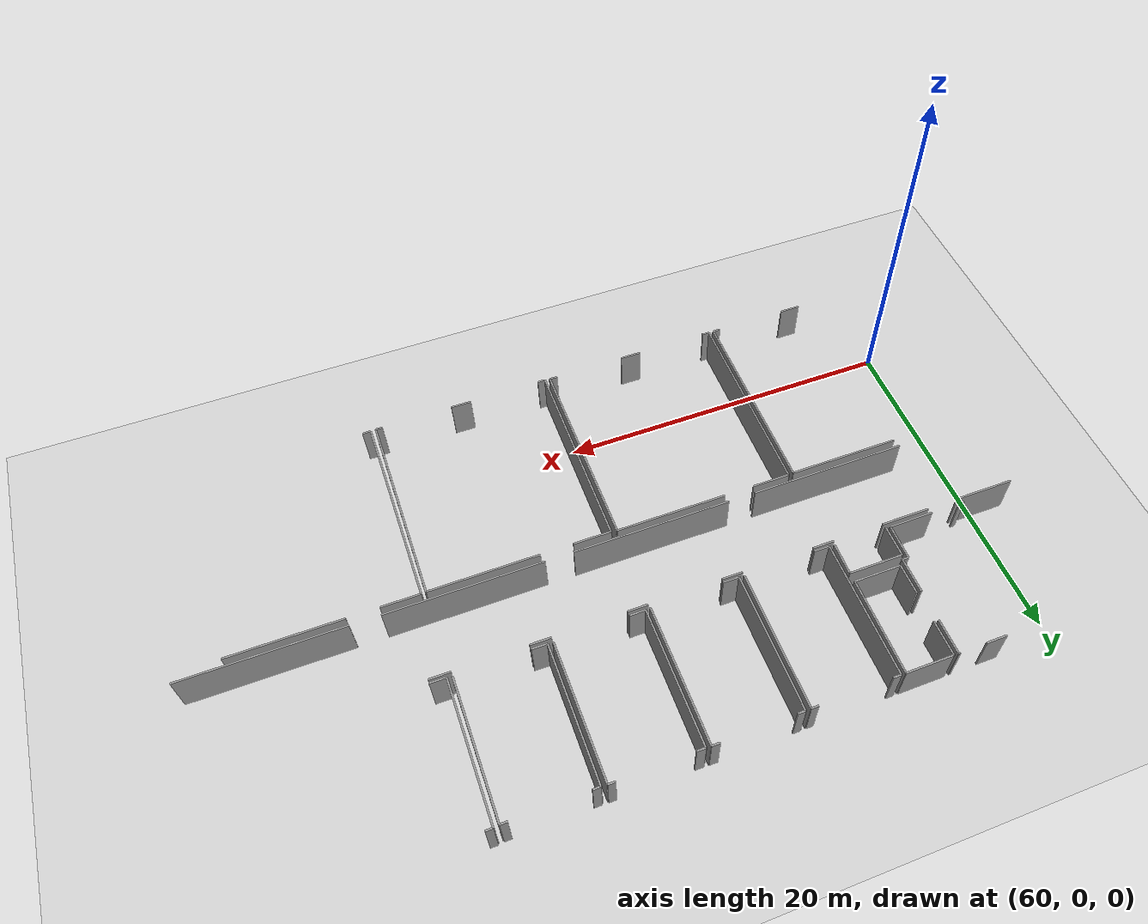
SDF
<sdf version="1.6">
 <world name="default">
  <model name="ground_plane">
   <static>1</static>
   <link name="link">
    <collision name="collision">
     <geometry><plane><normal>0 0 1</normal><size>100 100</size></plane></geometry>
     <surface><friction><ode><mu>100</mu><mu2>50</mu2></ode></friction></surface>
    </collision>
    <visual name="visual">
     <cast_shadows>0</cast_shadows>
     <geometry><plane><normal>0 0 1</normal><size>100 100</size></plane></geometry>
     <material>
      <script><uri>file://media/materials/scripts/gazebo.material</uri><name>Gazebo/Grey</name></script>
     </material>
    </visual>
   </link>
  </model>
  <model name="50037764_PLAN2">
   <static>1</static>
   <link name="Wall_424">
    <collision name="Wall_424_Collision">
     <geometry><box><size>1.22324469978 0.1 2.5</size></box></geometry>
     <pose>0.611622349891 0 1.25 0 0 0</pose>
    </collision>
    <visual name="Wall_424_Visual">
     <pose>0.611622349891 0 1.25 0 0 0</pose>
     <geometry><box><size>1.22324469978 0.1 2.5</size></box></geometry>
     <material>
      <script><uri>file://media/materials/scripts/gazebo.material</uri><name>Gazebo/Grey</name></script>
      <ambient>1 1 1 1</ambient>
     </material>
    </visual>
    <pose>227.818343586 -8.87337942956 0 0 0 3.14159265359</pose>
   </link>
   <link name="Wall_425">
    <collision name="Wall_425_Collision">
     <geometry><box><size>1.20062026539 0.1 2.5</size></box></geometry>
     <pose>0.600310132696 0 1.25 0 0 0</pose>
    </collision>
    <visual name="Wall_425_Visual">
     <pose>0.600310132696 0 1.25 0 0 0</pose>
     <geometry><box><size>1.20062026539 0.1 2.5</size></box></geometry>
     <material>
      <script><uri>file://media/materials/scripts/gazebo.material</uri><name>Gazebo/Grey</name></script>
      <ambient>1 1 1 1</ambient>
     </material>
    </visual>
    <pose>222.413900046 -8.87337942956 0 0 0 3.14159265359</pose>
   </link>
   <link name="Wall_426">
    <collision name="Wall_426_Collision">
     <geometry><box><size>1.16274340333 0.1 2.5</size></box></geometry>
     <pose>0.581371701663 0 1.25 0 0 0</pose>
    </collision>
    <visual name="Wall_426_Visual">
     <pose>0.581371701663 0 1.25 0 0 0</pose>
     <geometry><box><size>1.16274340333 0.1 2.5</size></box></geometry>
     <material>
      <script><uri>file://media/materials/scripts/gazebo.material</uri><name>Gazebo/Grey</name></script>
      <ambient>1 1 1 1</ambient>
     </material>
    </visual>
    <pose>217.011490162 -8.87337942956 0 0 0 3.14159265359</pose>
   </link>
   <link name="Wall_427">
    <collision name="Wall_427_Collision">
     <geometry><box><size>1.19655295134 0.1 2.5</size></box></geometry>
     <pose>0.598276475672 0 1.25 0 0 0</pose>
    </collision>
    <visual name="Wall_427_Visual">
     <pose>0.598276475672 0 1.25 0 0 0</pose>
     <geometry><box><size>1.19655295134 0.1 2.5</size></box></geometry>
     <material>
      <script><uri>file://media/materials/scripts/gazebo.material</uri><name>Gazebo/Grey</name></script>
      <ambient>1 1 1 1</ambient>
     </material>
    </visual>
    <pose>211.590014744 -8.87337942956 0 0 0 3.14159265359</pose>
   </link>
   <link name="Wall_428">
    <collision name="Wall_428_Collision">
     <geometry><box><size>1.24383547715 0.1 2.5</size></box></geometry>
     <pose>0.621917738573 0 1.25 0 0 0</pose>
    </collision>
    <visual name="Wall_428_Visual">
     <pose>0.621917738573 0 1.25 0 0 0</pose>
     <geometry><box><size>1.24383547715 0.1 2.5</size></box></geometry>
     <material>
      <script><uri>file://media/materials/scripts/gazebo.material</uri><name>Gazebo/Grey</name></script>
      <ambient>1 1 1 1</ambient>
     </material>
    </visual>
    <pose>206.165997255 -8.87337942956 0 0 0 3.14159265359</pose>
   </link>
   <link name="Wall_429">
    <collision name="Wall_429_Collision">
     <geometry><box><size>2.86847323199 0.1 2.5</size></box></geometry>
     <pose>1.43423661599 0 1.25 0 0 0</pose>
    </collision>
    <visual name="Wall_429_Visual">
     <pose>1.43423661599 0 1.25 0 0 0</pose>
     <geometry><box><size>2.86847323199 0.1 2.5</size></box></geometry>
     <material>
      <script><uri>file://media/materials/scripts/gazebo.material</uri><name>Gazebo/Grey</name></script>
      <ambient>1 1 1 1</ambient>
     </material>
    </visual>
    <pose>201.901418476 -8.87337942956 0 0 0 3.14159265359</pose>
   </link>
   <link name="Wall_430">
    <collision name="Wall_430_Collision">
     <geometry><box><size>3.4839086888 0.1 2.5</size></box></geometry>
     <pose>1.7419543444 0 1.25 0 0 0</pose>
    </collision>
    <visual name="Wall_430_Visual">
     <pose>1.7419543444 0 1.25 0 0 0</pose>
     <geometry><box><size>3.4839086888 0.1 2.5</size></box></geometry>
     <material>
      <script><uri>file://media/materials/scripts/gazebo.material</uri><name>Gazebo/Grey</name></script>
      <ambient>1 1 1 1</ambient>
     </material>
    </visual>
    <pose>197.208754893 -8.87337942956 0 0 0 3.14159265359</pose>
   </link>
   <link name="Wall_432">
    <collision name="Wall_432_Collision">
     <geometry><box><size>9.21475418171 0.1 2.5</size></box></geometry>
     <pose>4.60737709085 0 1.25 0 0 0</pose>
    </collision>
    <visual name="Wall_432_Visual">
     <pose>4.60737709085 0 1.25 0 0 0</pose>
     <geometry><box><size>9.21475418171 0.1 2.5</size></box></geometry>
     <material>
      <script><uri>file://media/materials/scripts/gazebo.material</uri><name>Gazebo/Grey</name></script>
      <ambient>1 1 1 1</ambient>
     </material>
    </visual>
    <pose>198.422085515 -13.3189536835 0 0 0 0.0</pose>
   </link>
   <link name="Wall_433">
    <collision name="Wall_433_Collision">
     <geometry><box><size>9.21348314607 0.1 2.5</size></box></geometry>
     <pose>4.60674157303 0 1.25 0 0 0</pose>
    </collision>
    <visual name="Wall_433_Visual">
     <pose>4.60674157303 0 1.25 0 0 0</pose>
     <geometry><box><size>9.21348314607 0.1 2.5</size></box></geometry>
     <material>
      <script><uri>file://media/materials/scripts/gazebo.material</uri><name>Gazebo/Grey</name></script>
      <ambient>1 1 1 1</ambient>
     </material>
    </visual>
    <pose>209.244445574 -13.3189536835 0 0 0 0.0</pose>
   </link>
   <link name="Wall_434">
    <collision name="Wall_434_Collision">
     <geometry><box><size>9.06960191164 0.1 2.5</size></box></geometry>
     <pose>4.53480095582 0 1.25 0 0 0</pose>
    </collision>
    <visual name="Wall_434_Visual">
     <pose>4.53480095582 0 1.25 0 0 0</pose>
     <geometry><box><size>9.06960191164 0.1 2.5</size></box></geometry>
     <material>
      <script><uri>file://media/materials/scripts/gazebo.material</uri><name>Gazebo/Grey</name></script>
      <ambient>1 1 1 1</ambient>
     </material>
    </visual>
    <pose>220.09273476 -13.3189536835 0 0 0 0.0</pose>
   </link>
   <link name="Wall_435">
    <collision name="Wall_435_Collision">
     <geometry><box><size>9.17611469826 0.1 2.5</size></box></geometry>
     <pose>4.58805734913 0 1.25 0 0 0</pose>
    </collision>
    <visual name="Wall_435_Visual">
     <pose>4.58805734913 0 1.25 0 0 0</pose>
     <geometry><box><size>9.17611469826 0.1 2.5</size></box></geometry>
     <material>
      <script><uri>file://media/materials/scripts/gazebo.material</uri><name>Gazebo/Grey</name></script>
      <ambient>1 1 1 1</ambient>
     </material>
    </visual>
    <pose>230.870100158 -13.3189536835 0 0 0 0.0</pose>
   </link>
   <link name="Wall_439">
    <collision name="Wall_439_Collision">
     <geometry><box><size>2.61629976105 0.1 2.5</size></box></geometry>
     <pose>1.30814988052 0 1.25 0 0 0</pose>
    </collision>
    <visual name="Wall_439_Visual">
     <pose>1.30814988052 0 1.25 0 0 0</pose>
     <geometry><box><size>2.61629976105 0.1 2.5</size></box></geometry>
     <material>
      <script><uri>file://media/materials/scripts/gazebo.material</uri><name>Gazebo/Grey</name></script>
      <ambient>1 1 1 1</ambient>
     </material>
    </visual>
    <pose>201.576033352 -8.58287152372 0 0 0 3.14159265359</pose>
   </link>
   <link name="Wall_440">
    <collision name="Wall_440_Collision">
     <geometry><box><size>0.276068940973 0.1 2.5</size></box></geometry>
     <pose>0.138034470487 0 1.25 0 0 0</pose>
    </collision>
    <visual name="Wall_440_Visual">
     <pose>0.138034470487 0 1.25 0 0 0</pose>
     <geometry><box><size>0.276068940973 0.1 2.5</size></box></geometry>
     <material>
      <script><uri>file://media/materials/scripts/gazebo.material</uri><name>Gazebo/Grey</name></script>
      <ambient>1 1 1 1</ambient>
     </material>
    </visual>
    <pose>197.215618486 -8.58287152372 0 0 0 3.14159265359</pose>
   </link>
   <link name="Wall_445">
    <collision name="Wall_445_Collision">
     <geometry><box><size>1.20417916518 0.1 2.5</size></box></geometry>
     <pose>0.602089582592 0 1.25 0 0 0</pose>
    </collision>
    <visual name="Wall_445_Visual">
     <pose>0.602089582592 0 1.25 0 0 0</pose>
     <geometry><box><size>1.20417916518 0.1 2.5</size></box></geometry>
     <material>
      <script><uri>file://media/materials/scripts/gazebo.material</uri><name>Gazebo/Grey</name></script>
      <ambient>1 1 1 1</ambient>
     </material>
    </visual>
    <pose>199.100818547 -0.529055874727 0 0 0 0.0</pose>
   </link>
   <link name="Wall_446">
    <collision name="Wall_446_Collision">
     <geometry><box><size>0.104987543851 0.1 2.5</size></box></geometry>
     <pose>0.0524937719254 0 1.25 0 0 0</pose>
    </collision>
    <visual name="Wall_446_Visual">
     <pose>0.0524937719254 0 1.25 0 0 0</pose>
     <geometry><box><size>0.104987543851 0.1 2.5</size></box></geometry>
     <material>
      <script><uri>file://media/materials/scripts/gazebo.material</uri><name>Gazebo/Grey</name></script>
      <ambient>1 1 1 1</ambient>
     </material>
    </visual>
    <pose>201.862778992 -0.529055874727 0 0 0 0.0</pose>
   </link>
   <link name="Wall_447">
    <collision name="Wall_447_Collision">
     <geometry><box><size>2.05465453251 0.1 2.5</size></box></geometry>
     <pose>1.02732726626 0 1.25 0 0 0</pose>
    </collision>
    <visual name="Wall_447_Visual">
     <pose>1.02732726626 0 1.25 0 0 0</pose>
     <geometry><box><size>2.05465453251 0.1 2.5</size></box></geometry>
     <material>
      <script><uri>file://media/materials/scripts/gazebo.material</uri><name>Gazebo/Grey</name></script>
      <ambient>1 1 1 1</ambient>
     </material>
    </visual>
    <pose>201.967766536 -0.529055874727 0 0 0 -1.57079632679</pose>
   </link>
   <link name="Wall_448">
    <collision name="Wall_448_Collision">
     <geometry><box><size>2.07702475977 0.1 2.5</size></box></geometry>
     <pose>1.03851237989 0 1.25 0 0 0</pose>
    </collision>
    <visual name="Wall_448_Visual">
     <pose>1.03851237989 0 1.25 0 0 0</pose>
     <geometry><box><size>2.07702475977 0.1 2.5</size></box></geometry>
     <material>
      <script><uri>file://media/materials/scripts/gazebo.material</uri><name>Gazebo/Grey</name></script>
      <ambient>1 1 1 1</ambient>
     </material>
    </visual>
    <pose>201.967766536 -4.41151049875 0 0 0 -1.57079632679</pose>
   </link>
   <link name="Wall_449">
    <collision name="Wall_449_Collision">
     <geometry><box><size>0.363007778738 0.1 2.5</size></box></geometry>
     <pose>0.181503889369 0 1.25 0 0 0</pose>
    </collision>
    <visual name="Wall_449_Visual">
     <pose>0.181503889369 0 1.25 0 0 0</pose>
     <geometry><box><size>0.363007778738 0.1 2.5</size></box></geometry>
     <material>
      <script><uri>file://media/materials/scripts/gazebo.material</uri><name>Gazebo/Grey</name></script>
      <ambient>1 1 1 1</ambient>
     </material>
    </visual>
    <pose>201.967766536 -6.48853525853 0 0 0 3.14159265359</pose>
   </link>
   <link name="Wall_450">
    <collision name="Wall_450_Collision">
     <geometry><box><size>2.09453325125 0.1 2.5</size></box></geometry>
     <pose>1.04726662563 0 1.25 0 0 0</pose>
    </collision>
    <visual name="Wall_450_Visual">
     <pose>1.04726662563 0 1.25 0 0 0</pose>
     <geometry><box><size>2.09453325125 0.1 2.5</size></box></geometry>
     <material>
      <script><uri>file://media/materials/scripts/gazebo.material</uri><name>Gazebo/Grey</name></script>
      <ambient>1 1 1 1</ambient>
     </material>
    </visual>
    <pose>201.604758757 -6.48853525853 0 0 0 -1.58451122294</pose>
   </link>
   <link name="Wall_461">
    <collision name="Wall_461_Collision">
     <geometry><box><size>2.76170623824 0.1 2.5</size></box></geometry>
     <pose>1.38085311912 0 1.25 0 0 0</pose>
    </collision>
    <visual name="Wall_461_Visual">
     <pose>1.38085311912 0 1.25 0 0 0</pose>
     <geometry><box><size>2.76170623824 0.1 2.5</size></box></geometry>
     <material>
      <script><uri>file://media/materials/scripts/gazebo.material</uri><name>Gazebo/Grey</name></script>
      <ambient>1 1 1 1</ambient>
     </material>
    </visual>
    <pose>205.006812751 -6.20565356653 0 0 0 3.14159265359</pose>
   </link>
   <link name="Wall_462">
    <collision name="Wall_462_Collision">
     <geometry><box><size>1.80619248564 0.1 2.5</size></box></geometry>
     <pose>0.903096242819 0 1.25 0 0 0</pose>
    </collision>
    <visual name="Wall_462_Visual">
     <pose>0.903096242819 0 1.25 0 0 0</pose>
     <geometry><box><size>1.80619248564 0.1 2.5</size></box></geometry>
     <material>
      <script><uri>file://media/materials/scripts/gazebo.material</uri><name>Gazebo/Grey</name></script>
      <ambient>1 1 1 1</ambient>
     </material>
    </visual>
    <pose>202.245106513 -6.20565356653 0 0 0 1.57079632679</pose>
   </link>
   <link name="Wall_463">
    <collision name="Wall_463_Collision">
     <geometry><box><size>2.07272865931 0.1 2.5</size></box></geometry>
     <pose>1.03636432966 0 1.25 0 0 0</pose>
    </collision>
    <visual name="Wall_463_Visual">
     <pose>1.03636432966 0 1.25 0 0 0</pose>
     <geometry><box><size>2.07272865931 0.1 2.5</size></box></geometry>
     <material>
      <script><uri>file://media/materials/scripts/gazebo.material</uri><name>Gazebo/Grey</name></script>
      <ambient>1 1 1 1</ambient>
     </material>
    </visual>
    <pose>202.245106513 -2.60353856322 0 0 0 1.57079632679</pose>
   </link>
   <link name="Wall_464">
    <collision name="Wall_464_Collision">
     <geometry><box><size>2.79068585083 0.1 2.5</size></box></geometry>
     <pose>1.39534292542 0 1.25 0 0 0</pose>
    </collision>
    <visual name="Wall_464_Visual">
     <pose>1.39534292542 0 1.25 0 0 0</pose>
     <geometry><box><size>2.79068585083 0.1 2.5</size></box></geometry>
     <material>
      <script><uri>file://media/materials/scripts/gazebo.material</uri><name>Gazebo/Grey</name></script>
      <ambient>1 1 1 1</ambient>
     </material>
    </visual>
    <pose>202.245106513 -0.53080990391 0 0 0 0.0</pose>
   </link>
   <link name="Wall_465">
    <collision name="Wall_465_Collision">
     <geometry><box><size>5.67491765694 0.1 2.5</size></box></geometry>
     <pose>2.83745882847 0 1.25 0 0 0</pose>
    </collision>
    <visual name="Wall_465_Visual">
     <pose>2.83745882847 0 1.25 0 0 0</pose>
     <geometry><box><size>5.67491765694 0.1 2.5</size></box></geometry>
     <material>
      <script><uri>file://media/materials/scripts/gazebo.material</uri><name>Gazebo/Grey</name></script>
      <ambient>1 1 1 1</ambient>
     </material>
    </visual>
    <pose>205.035792364 -0.53080990391 0 0 0 -1.57590296275</pose>
   </link>
   <link name="Wall_466">
    <collision name="Wall_466_Collision">
     <geometry><box><size>1.89249580558 0.1 2.5</size></box></geometry>
     <pose>0.946247902791 0 1.25 0 0 0</pose>
    </collision>
    <visual name="Wall_466_Visual">
     <pose>0.946247902791 0 1.25 0 0 0</pose>
     <geometry><box><size>1.89249580558 0.1 2.5</size></box></geometry>
     <material>
      <script><uri>file://media/materials/scripts/gazebo.material</uri><name>Gazebo/Grey</name></script>
      <ambient>1 1 1 1</ambient>
     </material>
    </visual>
    <pose>201.836849865 -8.64479638009 0 0 0 1.57079632679</pose>
   </link>
   <link name="Wall_467">
    <collision name="Wall_467_Collision">
     <geometry><box><size>3.1966546342 0.1 2.5</size></box></geometry>
     <pose>1.5983273171 0 1.25 0 0 0</pose>
    </collision>
    <visual name="Wall_467_Visual">
     <pose>1.5983273171 0 1.25 0 0 0</pose>
     <geometry><box><size>3.1966546342 0.1 2.5</size></box></geometry>
     <material>
      <script><uri>file://media/materials/scripts/gazebo.material</uri><name>Gazebo/Grey</name></script>
      <ambient>1 1 1 1</ambient>
     </material>
    </visual>
    <pose>201.836849865 -6.75230057451 0 0 0 0.0</pose>
   </link>
   <link name="Wall_468">
    <collision name="Wall_468_Collision">
     <geometry><box><size>1.89311204153 0.1 2.5</size></box></geometry>
     <pose>0.946556020763 0 1.25 0 0 0</pose>
    </collision>
    <visual name="Wall_468_Visual">
     <pose>0.946556020763 0 1.25 0 0 0</pose>
     <geometry><box><size>1.89311204153 0.1 2.5</size></box></geometry>
     <material>
      <script><uri>file://media/materials/scripts/gazebo.material</uri><name>Gazebo/Grey</name></script>
      <ambient>1 1 1 1</ambient>
     </material>
    </visual>
    <pose>205.033504499 -6.75230057451 0 0 0 -1.59631229978</pose>
   </link>
   <link name="Wall_469">
    <collision name="Wall_469_Collision">
     <geometry><box><size>0.902435304286 0.1 2.5</size></box></geometry>
     <pose>0.451217652143 0 1.25 0 0 0</pose>
    </collision>
    <visual name="Wall_469_Visual">
     <pose>0.451217652143 0 1.25 0 0 0</pose>
     <geometry><box><size>0.902435304286 0.1 2.5</size></box></geometry>
     <material>
      <script><uri>file://media/materials/scripts/gazebo.material</uri><name>Gazebo/Grey</name></script>
      <ambient>1 1 1 1</ambient>
     </material>
    </visual>
    <pose>206.199298388 -8.66731913163 0 0 0 3.14159265359</pose>
   </link>
   <link name="Wall_470">
    <collision name="Wall_470_Collision">
     <geometry><box><size>8.13539071636 0.1 2.5</size></box></geometry>
     <pose>4.06769535818 0 1.25 0 0 0</pose>
    </collision>
    <visual name="Wall_470_Visual">
     <pose>4.06769535818 0 1.25 0 0 0</pose>
     <geometry><box><size>8.13539071636 0.1 2.5</size></box></geometry>
     <material>
      <script><uri>file://media/materials/scripts/gazebo.material</uri><name>Gazebo/Grey</name></script>
      <ambient>1 1 1 1</ambient>
     </material>
    </visual>
    <pose>205.296863084 -8.66731913163 0 0 0 1.57079632679</pose>
   </link>
   <link name="Wall_471">
    <collision name="Wall_471_Collision">
     <geometry><box><size>0.462148558646 0.1 2.5</size></box></geometry>
     <pose>0.231074279323 0 1.25 0 0 0</pose>
    </collision>
    <visual name="Wall_471_Visual">
     <pose>0.231074279323 0 1.25 0 0 0</pose>
     <geometry><box><size>0.462148558646 0.1 2.5</size></box></geometry>
     <material>
      <script><uri>file://media/materials/scripts/gazebo.material</uri><name>Gazebo/Grey</name></script>
      <ambient>1 1 1 1</ambient>
     </material>
    </visual>
    <pose>205.296863084 -0.531928415273 0 0 0 0.0</pose>
   </link>
   <link name="Wall_472">
    <collision name="Wall_472_Collision">
     <geometry><box><size>0.423763282322 0.1 2.5</size></box></geometry>
     <pose>0.211881641161 0 1.25 0 0 0</pose>
    </collision>
    <visual name="Wall_472_Visual">
     <pose>0.211881641161 0 1.25 0 0 0</pose>
     <geometry><box><size>0.423763282322 0.1 2.5</size></box></geometry>
     <material>
      <script><uri>file://media/materials/scripts/gazebo.material</uri><name>Gazebo/Grey</name></script>
      <ambient>1 1 1 1</ambient>
     </material>
    </visual>
    <pose>209.95292084 -0.531928415273 0 0 0 0.0</pose>
   </link>
   <link name="Wall_473">
    <collision name="Wall_473_Collision">
     <geometry><box><size>8.13539558158 0.1 2.5</size></box></geometry>
     <pose>4.06769779079 0 1.25 0 0 0</pose>
    </collision>
    <visual name="Wall_473_Visual">
     <pose>4.06769779079 0 1.25 0 0 0</pose>
     <geometry><box><size>8.13539558158 0.1 2.5</size></box></geometry>
     <material>
      <script><uri>file://media/materials/scripts/gazebo.material</uri><name>Gazebo/Grey</name></script>
      <ambient>1 1 1 1</ambient>
     </material>
    </visual>
    <pose>210.376684122 -0.531928415273 0 0 0 -1.56970267976</pose>
   </link>
   <link name="Wall_474">
    <collision name="Wall_474_Collision">
     <geometry><box><size>0.934211195282 0.1 2.5</size></box></geometry>
     <pose>0.467105597641 0 1.25 0 0 0</pose>
    </collision>
    <visual name="Wall_474_Visual">
     <pose>0.467105597641 0 1.25 0 0 0</pose>
     <geometry><box><size>0.934211195282 0.1 2.5</size></box></geometry>
     <material>
      <script><uri>file://media/materials/scripts/gazebo.material</uri><name>Gazebo/Grey</name></script>
      <ambient>1 1 1 1</ambient>
     </material>
    </visual>
    <pose>211.616706492 -8.67006456861 0 0 0 3.14159265359</pose>
   </link>
   <link name="Wall_475">
    <collision name="Wall_475_Collision">
     <geometry><box><size>8.14914332198 0.1 2.5</size></box></geometry>
     <pose>4.07457166099 0 1.25 0 0 0</pose>
    </collision>
    <visual name="Wall_475_Visual">
     <pose>4.07457166099 0 1.25 0 0 0</pose>
     <geometry><box><size>8.14914332198 0.1 2.5</size></box></geometry>
     <material>
      <script><uri>file://media/materials/scripts/gazebo.material</uri><name>Gazebo/Grey</name></script>
      <ambient>1 1 1 1</ambient>
     </material>
    </visual>
    <pose>210.682495297 -8.67006456861 0 0 0 1.57079632679</pose>
   </link>
   <link name="Wall_476">
    <collision name="Wall_476_Collision">
     <geometry><box><size>0.439524124256 0.1 2.5</size></box></geometry>
     <pose>0.219762062128 0 1.25 0 0 0</pose>
    </collision>
    <visual name="Wall_476_Visual">
     <pose>0.219762062128 0 1.25 0 0 0</pose>
     <geometry><box><size>0.439524124256 0.1 2.5</size></box></geometry>
     <material>
      <script><uri>file://media/materials/scripts/gazebo.material</uri><name>Gazebo/Grey</name></script>
      <ambient>1 1 1 1</ambient>
     </material>
    </visual>
    <pose>210.682495297 -0.520921246632 0 0 0 0.0</pose>
   </link>
   <link name="Wall_477">
    <collision name="Wall_477_Collision">
     <geometry><box><size>0.47790940058 0.1 2.5</size></box></geometry>
     <pose>0.23895470029 0 1.25 0 0 0</pose>
    </collision>
    <visual name="Wall_477_Visual">
     <pose>0.23895470029 0 1.25 0 0 0</pose>
     <geometry><box><size>0.47790940058 0.1 2.5</size></box></geometry>
     <material>
      <script><uri>file://media/materials/scripts/gazebo.material</uri><name>Gazebo/Grey</name></script>
      <ambient>1 1 1 1</ambient>
     </material>
    </visual>
    <pose>215.308810819 -0.520921246632 0 0 0 0.0</pose>
   </link>
   <link name="Wall_478">
    <collision name="Wall_478_Collision">
     <geometry><box><size>8.14916112045 0.1 2.5</size></box></geometry>
     <pose>4.07458056022 0 1.25 0 0 0</pose>
    </collision>
    <visual name="Wall_478_Visual">
     <pose>4.07458056022 0 1.25 0 0 0</pose>
     <geometry><box><size>8.14916112045 0.1 2.5</size></box></geometry>
     <material>
      <script><uri>file://media/materials/scripts/gazebo.material</uri><name>Gazebo/Grey</name></script>
      <ambient>1 1 1 1</ambient>
     </material>
    </visual>
    <pose>215.78672022 -0.520921246632 0 0 0 -1.56870630922</pose>
   </link>
   <link name="Wall_479">
    <collision name="Wall_479_Collision">
     <geometry><box><size>0.935228023794 0.1 2.5</size></box></geometry>
     <pose>0.467614011897 0 1.25 0 0 0</pose>
    </collision>
    <visual name="Wall_479_Visual">
     <pose>0.467614011897 0 1.25 0 0 0</pose>
     <geometry><box><size>0.935228023794 0.1 2.5</size></box></geometry>
     <material>
      <script><uri>file://media/materials/scripts/gazebo.material</uri><name>Gazebo/Grey</name></script>
      <ambient>1 1 1 1</ambient>
     </material>
    </visual>
    <pose>217.00462657 -8.61192739844 0 0 0 3.14159265359</pose>
   </link>
   <link name="Wall_480">
    <collision name="Wall_480_Collision">
     <geometry><box><size>8.07331333571 0.1 2.5</size></box></geometry>
     <pose>4.03665666785 0 1.25 0 0 0</pose>
    </collision>
    <visual name="Wall_480_Visual">
     <pose>4.03665666785 0 1.25 0 0 0</pose>
     <geometry><box><size>8.07331333571 0.1 2.5</size></box></geometry>
     <material>
      <script><uri>file://media/materials/scripts/gazebo.material</uri><name>Gazebo/Grey</name></script>
      <ambient>1 1 1 1</ambient>
     </material>
    </visual>
    <pose>216.069398546 -8.61192739844 0 0 0 1.57079632679</pose>
   </link>
   <link name="Wall_481">
    <collision name="Wall_481_Collision">
     <geometry><box><size>0.500788042097 0.1 2.5</size></box></geometry>
     <pose>0.250394021048 0 1.25 0 0 0</pose>
    </collision>
    <visual name="Wall_481_Visual">
     <pose>0.250394021048 0 1.25 0 0 0</pose>
     <geometry><box><size>0.500788042097 0.1 2.5</size></box></geometry>
     <material>
      <script><uri>file://media/materials/scripts/gazebo.material</uri><name>Gazebo/Grey</name></script>
      <ambient>1 1 1 1</ambient>
     </material>
    </visual>
    <pose>216.069398546 -0.538614062738 0 0 0 0.0</pose>
   </link>
   <link name="Wall_482">
    <collision name="Wall_482_Collision">
     <geometry><box><size>0.420458589659 0.1 2.5</size></box></geometry>
     <pose>0.210229294829 0 1.25 0 0 0</pose>
    </collision>
    <visual name="Wall_482_Visual">
     <pose>0.210229294829 0 1.25 0 0 0</pose>
     <geometry><box><size>0.420458589659 0.1 2.5</size></box></geometry>
     <material>
      <script><uri>file://media/materials/scripts/gazebo.material</uri><name>Gazebo/Grey</name></script>
      <ambient>1 1 1 1</ambient>
     </material>
    </visual>
    <pose>220.765621028 -0.538614062738 0 0 0 0.0</pose>
   </link>
   <link name="Wall_483">
    <collision name="Wall_483_Collision">
     <geometry><box><size>8.07335497399 0.1 2.5</size></box></geometry>
     <pose>4.036677487 0 1.25 0 0 0</pose>
    </collision>
    <visual name="Wall_483_Visual">
     <pose>4.036677487 0 1.25 0 0 0</pose>
     <geometry><box><size>8.07335497399 0.1 2.5</size></box></geometry>
     <material>
      <script><uri>file://media/materials/scripts/gazebo.material</uri><name>Gazebo/Grey</name></script>
      <ambient>1 1 1 1</ambient>
     </material>
    </visual>
    <pose>221.186079618 -0.538614062738 0 0 0 -1.56758462959</pose>
   </link>
   <link name="Wall_484">
    <collision name="Wall_484_Collision">
     <geometry><box><size>0.898622197366 0.1 2.5</size></box></geometry>
     <pose>0.449311098683 0 1.25 0 0 0</pose>
    </collision>
    <visual name="Wall_484_Visual">
     <pose>0.449311098683 0 1.25 0 0 0</pose>
     <geometry><box><size>0.898622197366 0.1 2.5</size></box></geometry>
     <material>
      <script><uri>file://media/materials/scripts/gazebo.material</uri><name>Gazebo/Grey</name></script>
      <ambient>1 1 1 1</ambient>
     </material>
    </visual>
    <pose>222.409324317 -8.61185113631 0 0 0 3.14159265359</pose>
   </link>
   <link name="Wall_485">
    <collision name="Wall_485_Collision">
     <geometry><box><size>8.05429864253 0.1 2.5</size></box></geometry>
     <pose>4.02714932127 0 1.25 0 0 0</pose>
    </collision>
    <visual name="Wall_485_Visual">
     <pose>4.02714932127 0 1.25 0 0 0</pose>
     <geometry><box><size>8.05429864253 0.1 2.5</size></box></geometry>
     <material>
      <script><uri>file://media/materials/scripts/gazebo.material</uri><name>Gazebo/Grey</name></script>
      <ambient>1 1 1 1</ambient>
     </material>
    </visual>
    <pose>221.51070212 -8.61185113631 0 0 0 1.57079632679</pose>
   </link>
   <link name="Wall_486">
    <collision name="Wall_486_Collision">
     <geometry><box><size>0.439778331384 0.1 2.5</size></box></geometry>
     <pose>0.219889165692 0 1.25 0 0 0</pose>
    </collision>
    <visual name="Wall_486_Visual">
     <pose>0.219889165692 0 1.25 0 0 0</pose>
     <geometry><box><size>0.439778331384 0.1 2.5</size></box></geometry>
     <material>
      <script><uri>file://media/materials/scripts/gazebo.material</uri><name>Gazebo/Grey</name></script>
      <ambient>1 1 1 1</ambient>
     </material>
    </visual>
    <pose>221.51070212 -0.557552493772 0 0 0 0.0</pose>
   </link>
   <link name="Wall_487">
    <collision name="Wall_487_Collision">
     <geometry><box><size>0.414866032844 0.1 2.5</size></box></geometry>
     <pose>0.207433016422 0 1.25 0 0 0</pose>
    </collision>
    <visual name="Wall_487_Visual">
     <pose>0.207433016422 0 1.25 0 0 0</pose>
     <geometry><box><size>0.414866032844 0.1 2.5</size></box></geometry>
     <material>
      <script><uri>file://media/materials/scripts/gazebo.material</uri><name>Gazebo/Grey</name></script>
      <ambient>1 1 1 1</ambient>
     </material>
    </visual>
    <pose>226.166759876 -0.557552493772 0 0 0 0.0</pose>
   </link>
   <link name="Wall_488">
    <collision name="Wall_488_Collision">
     <geometry><box><size>8.05431559153 0.1 2.5</size></box></geometry>
     <pose>4.02715779577 0 1.25 0 0 0</pose>
    </collision>
    <visual name="Wall_488_Visual">
     <pose>4.02715779577 0 1.25 0 0 0</pose>
     <geometry><box><size>8.05431559153 0.1 2.5</size></box></geometry>
     <material>
      <script><uri>file://media/materials/scripts/gazebo.material</uri><name>Gazebo/Grey</name></script>
      <ambient>1 1 1 1</ambient>
     </material>
    </visual>
    <pose>226.581625909 -0.557552493772 0 0 0 -1.56874482103</pose>
   </link>
   <link name="Wall_489">
    <collision name="Wall_489_Collision">
     <geometry><box><size>0.936499059434 0.1 2.5</size></box></geometry>
     <pose>0.468249529717 0 1.25 0 0 0</pose>
    </collision>
    <visual name="Wall_489_Visual">
     <pose>0.468249529717 0 1.25 0 0 0</pose>
     <geometry><box><size>0.936499059434 0.1 2.5</size></box></geometry>
     <material>
      <script><uri>file://media/materials/scripts/gazebo.material</uri><name>Gazebo/Grey</name></script>
      <ambient>1 1 1 1</ambient>
     </material>
    </visual>
    <pose>227.828003457 -8.6617011541 0 0 0 3.14159265359</pose>
   </link>
   <link name="Wall_490">
    <collision name="Wall_490_Collision">
     <geometry><box><size>8.1517616554 0.1 2.5</size></box></geometry>
     <pose>4.0758808277 0 1.25 0 0 0</pose>
    </collision>
    <visual name="Wall_490_Visual">
     <pose>4.0758808277 0 1.25 0 0 0</pose>
     <geometry><box><size>8.1517616554 0.1 2.5</size></box></geometry>
     <material>
      <script><uri>file://media/materials/scripts/gazebo.material</uri><name>Gazebo/Grey</name></script>
      <ambient>1 1 1 1</ambient>
     </material>
    </visual>
    <pose>226.891504398 -8.6617011541 0 0 0 1.57079632679</pose>
   </link>
   <link name="Wall_491">
    <collision name="Wall_491_Collision">
     <geometry><box><size>0.418933346891 0.1 2.5</size></box></geometry>
     <pose>0.209466673446 0 1.25 0 0 0</pose>
    </collision>
    <visual name="Wall_491_Visual">
     <pose>0.209466673446 0 1.25 0 0 0</pose>
     <geometry><box><size>0.418933346891 0.1 2.5</size></box></geometry>
     <material>
      <script><uri>file://media/materials/scripts/gazebo.material</uri><name>Gazebo/Grey</name></script>
      <ambient>1 1 1 1</ambient>
     </material>
    </visual>
    <pose>226.891504398 -0.509939498704 0 0 0 0.0</pose>
   </link>
   <link name="Wall_549">
    <collision name="Wall_549_Collision">
     <geometry><box><size>0.50663480604 0.1 2.5</size></box></geometry>
     <pose>0.25331740302 0 1.25 0 0 0</pose>
    </collision>
    <visual name="Wall_549_Visual">
     <pose>0.25331740302 0 1.25 0 0 0</pose>
     <geometry><box><size>0.50663480604 0.1 2.5</size></box></geometry>
     <material>
      <script><uri>file://media/materials/scripts/gazebo.material</uri><name>Gazebo/Grey</name></script>
      <ambient>1 1 1 1</ambient>
     </material>
    </visual>
    <pose>227.378819462 -25.3403833443 0 0 0 3.14159265359</pose>
   </link>
   <link name="Wall_550">
    <collision name="Wall_550_Collision">
     <geometry><box><size>11.5643144034 0.1 2.5</size></box></geometry>
     <pose>5.78215720169 0 1.25 0 0 0</pose>
    </collision>
    <visual name="Wall_550_Visual">
     <pose>5.78215720169 0 1.25 0 0 0</pose>
     <geometry><box><size>11.5643144034 0.1 2.5</size></box></geometry>
     <material>
      <script><uri>file://media/materials/scripts/gazebo.material</uri><name>Gazebo/Grey</name></script>
      <ambient>1 1 1 1</ambient>
     </material>
    </visual>
    <pose>226.872184656 -25.3403833443 0 0 0 1.57079632679</pose>
   </link>
   <link name="Wall_551">
    <collision name="Wall_551_Collision">
     <geometry><box><size>2.25278356805 0.1 2.5</size></box></geometry>
     <pose>1.12639178403 0 1.25 0 0 0</pose>
    </collision>
    <visual name="Wall_551_Visual">
     <pose>1.12639178403 0 1.25 0 0 0</pose>
     <geometry><box><size>2.25278356805 0.1 2.5</size></box></geometry>
     <material>
      <script><uri>file://media/materials/scripts/gazebo.material</uri><name>Gazebo/Grey</name></script>
      <ambient>1 1 1 1</ambient>
     </material>
    </visual>
    <pose>226.872184656 -13.776068941 0 0 0 0.0</pose>
   </link>
   <link name="Wall_552">
    <collision name="Wall_552_Collision">
     <geometry><box><size>6.47770603488 0.1 2.5</size></box></geometry>
     <pose>3.23885301744 0 1.25 0 0 0</pose>
    </collision>
    <visual name="Wall_552_Visual">
     <pose>3.23885301744 0 1.25 0 0 0</pose>
     <geometry><box><size>6.47770603488 0.1 2.5</size></box></geometry>
     <material>
      <script><uri>file://media/materials/scripts/gazebo.material</uri><name>Gazebo/Grey</name></script>
      <ambient>1 1 1 1</ambient>
     </material>
    </visual>
    <pose>230.93365194 -13.776068941 0 0 0 0.0</pose>
   </link>
   <link name="Wall_554">
    <collision name="Wall_554_Collision">
     <geometry><box><size>0.407494026132 0.1 2.5</size></box></geometry>
     <pose>0.203747013066 0 1.25 0 0 0</pose>
    </collision>
    <visual name="Wall_554_Visual">
     <pose>0.203747013066 0 1.25 0 0 0</pose>
     <geometry><box><size>0.407494026132 0.1 2.5</size></box></geometry>
     <material>
      <script><uri>file://media/materials/scripts/gazebo.material</uri><name>Gazebo/Grey</name></script>
      <ambient>1 1 1 1</ambient>
     </material>
    </visual>
    <pose>226.575016523 -25.3701255783 0 0 0 3.14159265359</pose>
   </link>
   <link name="Wall_555">
    <collision name="Wall_555_Collision">
     <geometry><box><size>1.20062026539 0.1 2.5</size></box></geometry>
     <pose>0.600310132696 0 1.25 0 0 0</pose>
    </collision>
    <visual name="Wall_555_Visual">
     <pose>0.600310132696 0 1.25 0 0 0</pose>
     <geometry><box><size>1.20062026539 0.1 2.5</size></box></geometry>
     <material>
      <script><uri>file://media/materials/scripts/gazebo.material</uri><name>Gazebo/Grey</name></script>
      <ambient>1 1 1 1</ambient>
     </material>
    </visual>
    <pose>221.984035792 -25.3701255783 0 0 0 3.14159265359</pose>
   </link>
   <link name="Wall_556">
    <collision name="Wall_556_Collision">
     <geometry><box><size>0.467486908333 0.1 2.5</size></box></geometry>
     <pose>0.233743454166 0 1.25 0 0 0</pose>
    </collision>
    <visual name="Wall_556_Visual">
     <pose>0.233743454166 0 1.25 0 0 0</pose>
     <geometry><box><size>0.467486908333 0.1 2.5</size></box></geometry>
     <material>
      <script><uri>file://media/materials/scripts/gazebo.material</uri><name>Gazebo/Grey</name></script>
      <ambient>1 1 1 1</ambient>
     </material>
    </visual>
    <pose>216.574762316 -25.3701255783 0 0 0 3.14159265359</pose>
   </link>
   <link name="Wall_557">
    <collision name="Wall_557_Collision">
     <geometry><box><size>11.5614164421 0.1 2.5</size></box></geometry>
     <pose>5.78070822106 0 1.25 0 0 0</pose>
    </collision>
    <visual name="Wall_557_Visual">
     <pose>5.78070822106 0 1.25 0 0 0</pose>
     <geometry><box><size>11.5614164421 0.1 2.5</size></box></geometry>
     <material>
      <script><uri>file://media/materials/scripts/gazebo.material</uri><name>Gazebo/Grey</name></script>
      <ambient>1 1 1 1</ambient>
     </material>
    </visual>
    <pose>216.107275408 -25.3701255783 0 0 0 1.57079632679</pose>
   </link>
   <link name="Wall_558">
    <collision name="Wall_558_Collision">
     <geometry><box><size>2.19329910011 0.1 2.5</size></box></geometry>
     <pose>1.09664955005 0 1.25 0 0 0</pose>
    </collision>
    <visual name="Wall_558_Visual">
     <pose>1.09664955005 0 1.25 0 0 0</pose>
     <geometry><box><size>2.19329910011 0.1 2.5</size></box></geometry>
     <material>
      <script><uri>file://media/materials/scripts/gazebo.material</uri><name>Gazebo/Grey</name></script>
      <ambient>1 1 1 1</ambient>
     </material>
    </visual>
    <pose>216.107275408 -13.8087091362 0 0 0 0.0</pose>
   </link>
   <link name="Wall_559">
    <collision name="Wall_559_Collision">
     <geometry><box><size>6.39635975393 0.1 2.5</size></box></geometry>
     <pose>3.19817987696 0 1.25 0 0 0</pose>
    </collision>
    <visual name="Wall_559_Visual">
     <pose>3.19817987696 0 1.25 0 0 0</pose>
     <geometry><box><size>6.39635975393 0.1 2.5</size></box></geometry>
     <material>
      <script><uri>file://media/materials/scripts/gazebo.material</uri><name>Gazebo/Grey</name></script>
      <ambient>1 1 1 1</ambient>
     </material>
    </visual>
    <pose>220.207890589 -13.8087091362 0 0 0 0.0</pose>
   </link>
   <link name="Wall_560">
    <collision name="Wall_560_Collision">
     <geometry><box><size>11.5614534019 0.1 2.5</size></box></geometry>
     <pose>5.78072670095 0 1.25 0 0 0</pose>
    </collision>
    <visual name="Wall_560_Visual">
     <pose>5.78072670095 0 1.25 0 0 0</pose>
     <geometry><box><size>11.5614534019 0.1 2.5</size></box></geometry>
     <material>
      <script><uri>file://media/materials/scripts/gazebo.material</uri><name>Gazebo/Grey</name></script>
      <ambient>1 1 1 1</ambient>
     </material>
    </visual>
    <pose>226.604250343 -13.8087091362 0 0 0 -1.57332488872</pose>
   </link>
   <link name="Wall_561">
    <collision name="Wall_561_Collision">
     <geometry><box><size>0.456810208958 0.1 2.5</size></box></geometry>
     <pose>0.228405104479 0 1.25 0 0 0</pose>
    </collision>
    <visual name="Wall_561_Visual">
     <pose>0.228405104479 0 1.25 0 0 0</pose>
     <geometry><box><size>0.456810208958 0.1 2.5</size></box></geometry>
     <material>
      <script><uri>file://media/materials/scripts/gazebo.material</uri><name>Gazebo/Grey</name></script>
      <ambient>1 1 1 1</ambient>
     </material>
    </visual>
    <pose>215.810107275 -25.34165438 0 0 0 3.14159265359</pose>
   </link>
   <link name="Wall_562">
    <collision name="Wall_562_Collision">
     <geometry><box><size>1.22985408511 0.1 2.5</size></box></geometry>
     <pose>0.614927042554 0 1.25 0 0 0</pose>
    </collision>
    <visual name="Wall_562_Visual">
     <pose>0.614927042554 0 1.25 0 0 0</pose>
     <geometry><box><size>1.22985408511 0.1 2.5</size></box></geometry>
     <material>
      <script><uri>file://media/materials/scripts/gazebo.material</uri><name>Gazebo/Grey</name></script>
      <ambient>1 1 1 1</ambient>
     </material>
    </visual>
    <pose>211.19116376 -25.34165438 0 0 0 3.14159265359</pose>
   </link>
   <link name="Wall_563">
    <collision name="Wall_563_Collision">
     <geometry><box><size>0.432152117545 0.1 2.5</size></box></geometry>
     <pose>0.216076058773 0 1.25 0 0 0</pose>
    </collision>
    <visual name="Wall_563_Visual">
     <pose>0.216076058773 0 1.25 0 0 0</pose>
     <geometry><box><size>0.432152117545 0.1 2.5</size></box></geometry>
     <material>
      <script><uri>file://media/materials/scripts/gazebo.material</uri><name>Gazebo/Grey</name></script>
      <ambient>1 1 1 1</ambient>
     </material>
    </visual>
    <pose>205.756469571 -25.34165438 0 0 0 3.14159265359</pose>
   </link>
   <link name="Wall_564">
    <collision name="Wall_564_Collision">
     <geometry><box><size>11.5862778992 0.1 2.5</size></box></geometry>
     <pose>5.79313894962 0 1.25 0 0 0</pose>
    </collision>
    <visual name="Wall_564_Visual">
     <pose>5.79313894962 0 1.25 0 0 0</pose>
     <geometry><box><size>11.5862778992 0.1 2.5</size></box></geometry>
     <material>
      <script><uri>file://media/materials/scripts/gazebo.material</uri><name>Gazebo/Grey</name></script>
      <ambient>1 1 1 1</ambient>
     </material>
    </visual>
    <pose>205.324317454 -25.34165438 0 0 0 1.57079632679</pose>
   </link>
   <link name="Wall_565">
    <collision name="Wall_565_Collision">
     <geometry><box><size>2.20550104225 0.1 2.5</size></box></geometry>
     <pose>1.10275052112 0 1.25 0 0 0</pose>
    </collision>
    <visual name="Wall_565_Visual">
     <pose>1.10275052112 0 1.25 0 0 0</pose>
     <geometry><box><size>2.20550104225 0.1 2.5</size></box></geometry>
     <material>
      <script><uri>file://media/materials/scripts/gazebo.material</uri><name>Gazebo/Grey</name></script>
      <ambient>1 1 1 1</ambient>
     </material>
    </visual>
    <pose>205.324317454 -13.7553764808 0 0 0 0.0</pose>
   </link>
   <link name="Wall_566">
    <collision name="Wall_566_Collision">
     <geometry><box><size>6.48101072754 0.1 2.5</size></box></geometry>
     <pose>3.24050536377 0 1.25 0 0 0</pose>
    </collision>
    <visual name="Wall_566_Visual">
     <pose>3.24050536377 0 1.25 0 0 0</pose>
     <geometry><box><size>6.48101072754 0.1 2.5</size></box></geometry>
     <material>
      <script><uri>file://media/materials/scripts/gazebo.material</uri><name>Gazebo/Grey</name></script>
      <ambient>1 1 1 1</ambient>
     </material>
    </visual>
    <pose>209.28994865 -13.7553764808 0 0 0 0.0</pose>
   </link>
   <link name="Wall_567">
    <collision name="Wall_567_Collision">
     <geometry><box><size>11.5863440358 0.1 2.5</size></box></geometry>
     <pose>5.7931720179 0 1.25 0 0 0</pose>
    </collision>
    <visual name="Wall_567_Visual">
     <pose>5.7931720179 0 1.25 0 0 0</pose>
     <geometry><box><size>11.5863440358 0.1 2.5</size></box></geometry>
     <material>
      <script><uri>file://media/materials/scripts/gazebo.material</uri><name>Gazebo/Grey</name></script>
      <ambient>1 1 1 1</ambient>
     </material>
    </visual>
    <pose>215.770959378 -13.7553764808 0 0 0 -1.56741752395</pose>
   </link>
   <link name="Wall_568">
    <collision name="Wall_568_Collision">
     <geometry><box><size>0.430118460522 0.1 2.5</size></box></geometry>
     <pose>0.215059230261 0 1.25 0 0 0</pose>
    </collision>
    <visual name="Wall_568_Visual">
     <pose>0.215059230261 0 1.25 0 0 0</pose>
     <geometry><box><size>0.430118460522 0.1 2.5</size></box></geometry>
     <material>
      <script><uri>file://media/materials/scripts/gazebo.material</uri><name>Gazebo/Grey</name></script>
      <ambient>1 1 1 1</ambient>
     </material>
    </visual>
    <pose>205.023082007 -25.3403833443 0 0 0 3.14159265359</pose>
   </link>
   <link name="Wall_569">
    <collision name="Wall_569_Collision">
     <geometry><box><size>1.19655295134 0.1 2.5</size></box></geometry>
     <pose>0.598276475672 0 1.25 0 0 0</pose>
    </collision>
    <visual name="Wall_569_Visual">
     <pose>0.598276475672 0 1.25 0 0 0</pose>
     <geometry><box><size>1.19655295134 0.1 2.5</size></box></geometry>
     <material>
      <script><uri>file://media/materials/scripts/gazebo.material</uri><name>Gazebo/Grey</name></script>
      <ambient>1 1 1 1</ambient>
     </material>
    </visual>
    <pose>200.346433474 -25.3403833443 0 0 0 3.14159265359</pose>
   </link>
   <link name="Wall_573">
    <collision name="Wall_573_Collision">
     <geometry><box><size>6.47821444913 0.1 2.5</size></box></geometry>
     <pose>3.23910722457 0 1.25 0 0 0</pose>
    </collision>
    <visual name="Wall_573_Visual">
     <pose>3.23910722457 0 1.25 0 0 0</pose>
     <geometry><box><size>6.47821444913 0.1 2.5</size></box></geometry>
     <material>
      <script><uri>file://media/materials/scripts/gazebo.material</uri><name>Gazebo/Grey</name></script>
      <ambient>1 1 1 1</ambient>
     </material>
    </visual>
    <pose>198.544867558 -13.7859575983 0 0 0 0.0</pose>
   </link>
   <link name="Wall_574">
    <collision name="Wall_574_Collision">
     <geometry><box><size>11.5544257461 0.1 2.5</size></box></geometry>
     <pose>5.77721287305 0 1.25 0 0 0</pose>
    </collision>
    <visual name="Wall_574_Visual">
     <pose>5.77721287305 0 1.25 0 0 0</pose>
     <geometry><box><size>11.5544257461 0.1 2.5</size></box></geometry>
     <material>
      <script><uri>file://media/materials/scripts/gazebo.material</uri><name>Gazebo/Grey</name></script>
      <ambient>1 1 1 1</ambient>
     </material>
    </visual>
    <pose>205.023082007 -13.7859575983 0 0 0 -1.57079632679</pose>
   </link>
   <pose>-135.8 21.3069729015 0 0 0 0</pose>
  </model>
 </world>
</sdf>
